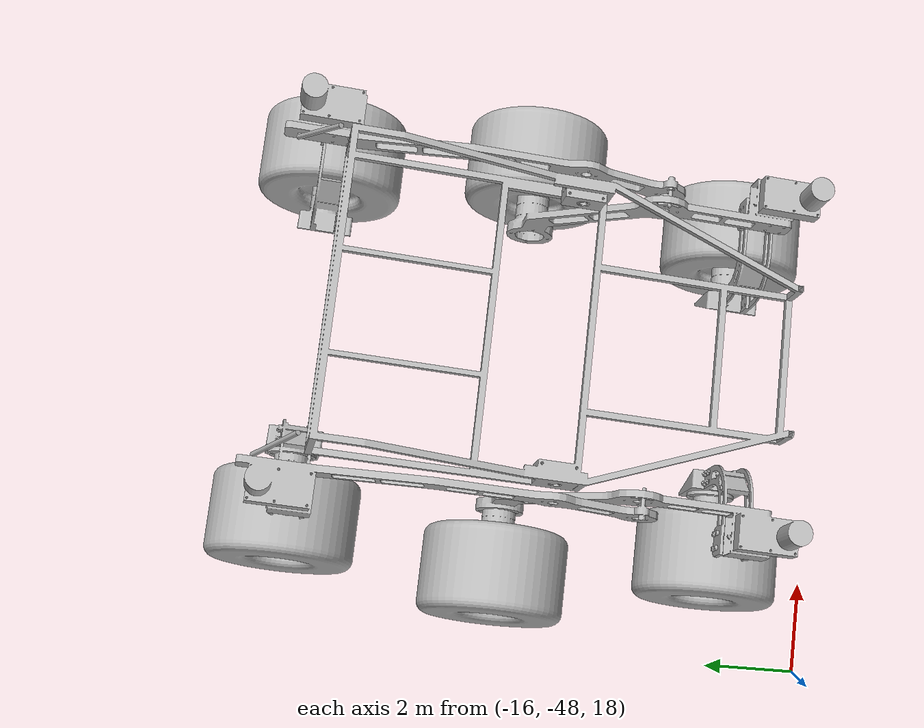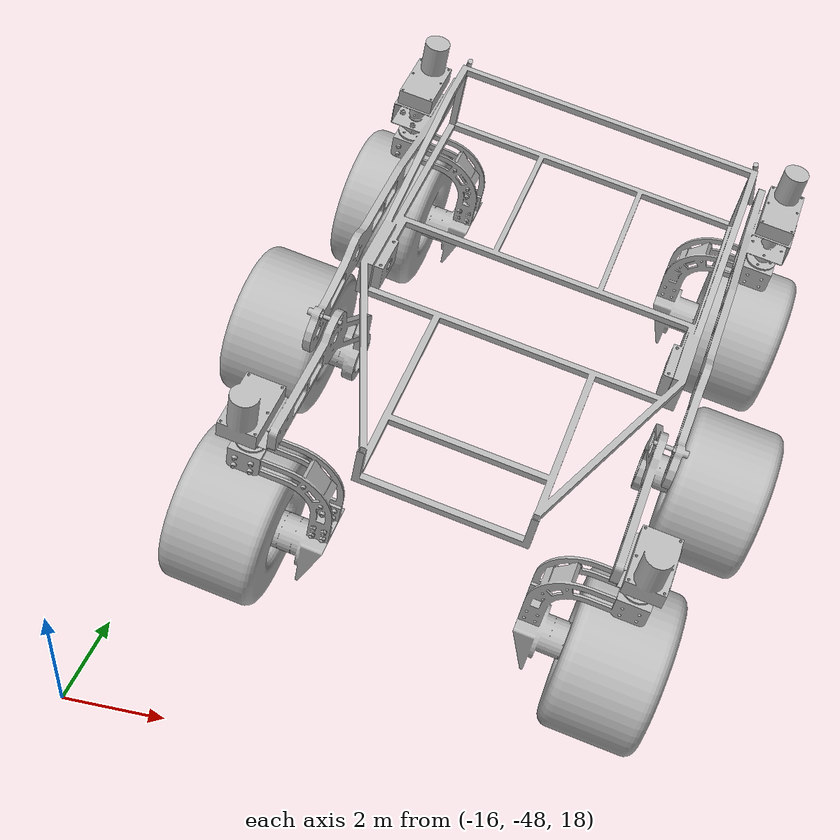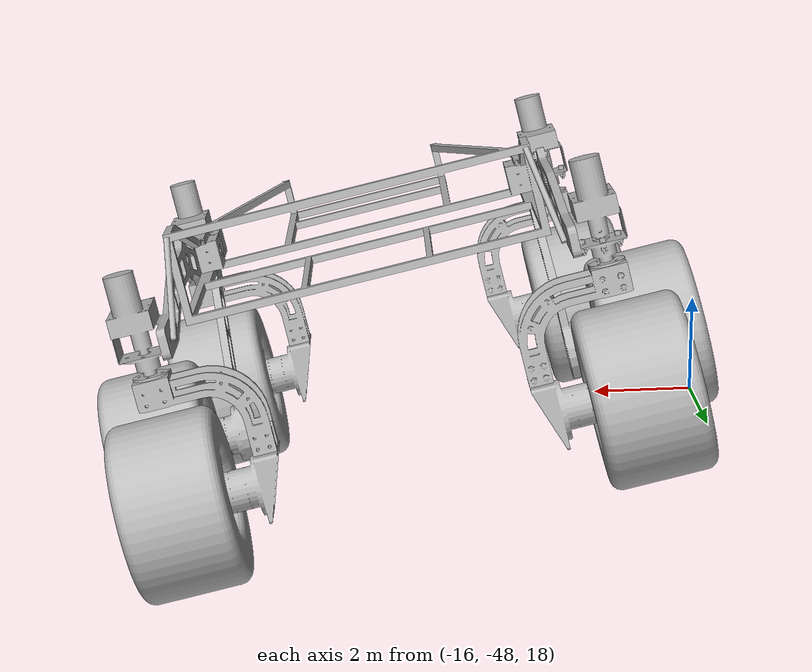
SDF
<sdf version="1.5">
 <world name="default">
  <light name="sun" type="directional">
   <pose>0 0 10 0 -0 0</pose>
   <diffuse>0.8 0.8 0.8 1</diffuse>
   <specular>0.2 0.2 0.2 1</specular>
   <attenuation>
    <range>1000</range>
    <constant>0.9</constant>
    <linear>0.01</linear>
    <quadratic>0.001</quadratic>
   </attenuation>
   <direction>-0.5 0.1 -0.9</direction>
  </light>
  <physics type="ode">
   <max_step_size>0.001</max_step_size>
   <real_time_factor>1</real_time_factor>
   <real_time_update_rate>1000</real_time_update_rate>
   <gravity>0 0 -9.8</gravity>
  </physics>
  <scene><ambient>0.4 0.4 0.4 1</ambient><background>0.7 0.7 0.7 1</background><shadows>1</shadows></scene>
  <audio><device>default</device></audio>
  <spherical_coordinates>
   <surface_model>EARTH_WGS84</surface_model>
   <latitude_deg>0</latitude_deg>
   <longitude_deg>0</longitude_deg>
   <elevation>0</elevation>
   <heading_deg>0</heading_deg>
  </spherical_coordinates>
  <model name="MSI Rover">
   <static>0</static>
   <link name="Chassis">
    <self_collide>1</self_collide>
    <pose>0 0 4.72 0 -0 0</pose>
    <collision name="Chassis_Collision">
     <geometry><mesh><scale>0.01 0.01 0.01</scale><uri>model://msi_rover/meshes/Chassis.STL</uri></mesh></geometry>
    </collision>
    <visual name="Chassis_Visual">
     <geometry><mesh><scale>0.01 0.01 0.01</scale><uri>model://msi_rover/meshes/Chassis.STL</uri></mesh></geometry>
    </visual>
    <velocity_decay><linear>0</linear><angular>0</angular></velocity_decay>
    <inertial>
     <inertia><ixx>1</ixx><ixy>0</ixy><ixz>0</ixz><iyy>1</iyy><iyz>0</iyz><izz>1</izz></inertia>
     <mass>1</mass>
    </inertial>
   </link>
   <link name="Left_Rocker">
    <self_collide>1</self_collide>
    <pose>-3.27 0 4.72 0 -0 0</pose>
    <collision name="Left_Rocker_Collision">
     <geometry>
      <mesh><scale>0.01 0.01 0.01</scale><uri>model://msi_rover/meshes/Rocker_L.STL</uri></mesh>
     </geometry>
    </collision>
    <visual name="Left_Rocker_Visual">
     <geometry>
      <mesh><scale>0.01 0.01 0.01</scale><uri>model://msi_rover/meshes/Rocker_L.STL</uri></mesh>
     </geometry>
    </visual>
    <velocity_decay><linear>0</linear><angular>0</angular></velocity_decay>
    <inertial>
     <inertia><ixx>1</ixx><ixy>0</ixy><ixz>0</ixz><iyy>1</iyy><iyz>0</iyz><izz>1</izz></inertia>
     <mass>1</mass>
    </inertial>
   </link>
   <link name="Left_Bogie">
    <self_collide>1</self_collide>
    <pose>-2.94 1.75 4.32 0 -0 0</pose>
    <collision name="Left_Bogie_Collision">
     <geometry><mesh><scale>0.01 0.01 0.01</scale><uri>model://msi_rover/meshes/Bogie_L.STL</uri></mesh></geometry>
    </collision>
    <visual name="Left_Bogie_Visual">
     <geometry><mesh><scale>0.01 0.01 0.01</scale><uri>model://msi_rover/meshes/Bogie_L.STL</uri></mesh></geometry>
    </visual>
    <velocity_decay><linear>0</linear><angular>0</angular></velocity_decay>
    <inertial>
     <inertia><ixx>1</ixx><ixy>0</ixy><ixz>0</ixz><iyy>1</iyy><iyz>0</iyz><izz>1</izz></inertia>
     <mass>1</mass>
    </inertial>
   </link>
   <link name="Left_Rear_Steering">
    <self_collide>1</self_collide>
    <pose>-3.81 -4.9 3.68 0 -0 0</pose>
    <collision name="Left_Rear_Steering_Collision">
     <geometry>
      <mesh><scale>0.01 0.01 0.01</scale><uri>model://msi_rover/meshes/C_Assembly_L.STL</uri></mesh>
     </geometry>
    </collision>
    <visual name="Left_Rear_Steering_Visual">
     <geometry>
      <mesh><scale>0.01 0.01 0.01</scale><uri>model://msi_rover/meshes/C_Assembly_L.STL</uri></mesh>
     </geometry>
    </visual>
    <velocity_decay><linear>0</linear><angular>0</angular></velocity_decay>
    <inertial>
     <inertia><ixx>1</ixx><ixy>0</ixy><ixz>0</ixz><iyy>1</iyy><iyz>0</iyz><izz>1</izz></inertia>
     <mass>1</mass>
    </inertial>
   </link>
   <link name="Left_Front_Steering">
    <self_collide>1</self_collide>
    <pose>-3.48 4 3.68 0 -0 0</pose>
    <collision name="Left_Front_Steering_Collision">
     <geometry>
      <mesh><scale>0.01 0.01 0.01</scale><uri>model://msi_rover/meshes/C_Assembly_L.STL</uri></mesh>
     </geometry>
    </collision>
    <visual name="Left_Front_Steering_Visual">
     <geometry>
      <mesh><scale>0.01 0.01 0.01</scale><uri>model://msi_rover/meshes/C_Assembly_L.STL</uri></mesh>
     </geometry>
    </visual>
    <velocity_decay><linear>0</linear><angular>0</angular></velocity_decay>
    <inertial>
     <inertia><ixx>1</ixx><ixy>0</ixy><ixz>0</ixz><iyy>1</iyy><iyz>0</iyz><izz>1</izz></inertia>
     <mass>1</mass>
    </inertial>
   </link>
   <link name="Left_Rear_Tyre">
    <self_collide>1</self_collide>
    <pose>-3.91 -4.9 1.5 0 -0 0</pose>
    <collision name="Left_Rear_Tyre_Collision">
     <geometry><mesh><scale>0.01 0.01 0.01</scale><uri>model://msi_rover/meshes/Tyre.STL</uri></mesh></geometry>
    </collision>
    <visual name="Left_Rear_Tyre_Visual">
     <geometry><mesh><scale>0.01 0.01 0.01</scale><uri>model://msi_rover/meshes/Tyre.STL</uri></mesh></geometry>
    </visual>
    <velocity_decay><linear>0</linear><angular>0</angular></velocity_decay>
    <inertial>
     <inertia><ixx>1</ixx><ixy>0</ixy><ixz>0</ixz><iyy>1</iyy><iyz>0</iyz><izz>1</izz></inertia>
     <mass>1</mass>
    </inertial>
   </link>
   <link name="Left_Middle_Tyre">
    <self_collide>1</self_collide>
    <pose>-4.48 -0.5 1.5 0 -0 0</pose>
    <collision name="Left_Middle_Tyre_Collision">
     <geometry><mesh><scale>0.01 0.01 0.01</scale><uri>model://msi_rover/meshes/Tyre.STL</uri></mesh></geometry>
    </collision>
    <visual name="Left_Middle_Tyre_Visual">
     <geometry><mesh><scale>0.01 0.01 0.01</scale><uri>model://msi_rover/meshes/Tyre.STL</uri></mesh></geometry>
    </visual>
    <velocity_decay><linear>0</linear><angular>0</angular></velocity_decay>
    <inertial>
     <inertia><ixx>1</ixx><ixy>0</ixy><ixz>0</ixz><iyy>1</iyy><iyz>0</iyz><izz>1</izz></inertia>
     <mass>1</mass>
    </inertial>
   </link>
   <link name="Left_Front_Tyre">
    <self_collide>1</self_collide>
    <pose>-3.58 4 1.5 0 -0 0</pose>
    <collision name="Left_Front_Tyre_Collision">
     <geometry><mesh><scale>0.01 0.01 0.01</scale><uri>model://msi_rover/meshes/Tyre.STL</uri></mesh></geometry>
    </collision>
    <visual name="Left_Front_Tyre_Visual">
     <geometry><mesh><scale>0.01 0.01 0.01</scale><uri>model://msi_rover/meshes/Tyre.STL</uri></mesh></geometry>
    </visual>
    <velocity_decay><linear>0</linear><angular>0</angular></velocity_decay>
    <inertial>
     <inertia><ixx>1</ixx><ixy>0</ixy><ixz>0</ixz><iyy>1</iyy><iyz>0</iyz><izz>1</izz></inertia>
     <mass>1</mass>
    </inertial>
   </link>
   <joint name="Left_Rocker_Joint" type="revolute">
    <child>Left_Rocker</child>
    <parent>Chassis</parent>
    <axis>
     <xyz>1 0 0</xyz>
     <use_parent_model_frame>1</use_parent_model_frame>
     <limit><lower>-1e+16</lower><upper>1e+16</upper></limit>
     <dynamics><spring_reference>0</spring_reference><spring_stiffness>0</spring_stiffness></dynamics>
    </axis>
   </joint>
   <joint name="Left_Bogie_Joint" type="revolute">
    <child>Left_Bogie</child>
    <parent>Left_Rocker</parent>
    <axis>
     <xyz>1 0 0</xyz>
     <use_parent_model_frame>1</use_parent_model_frame>
     <limit><lower>-1e+16</lower><upper>1e+16</upper></limit>
     <dynamics><spring_reference>0</spring_reference><spring_stiffness>0</spring_stiffness></dynamics>
    </axis>
   </joint>
   <joint name="Left_Rear_Steering_Joint" type="revolute">
    <child>Left_Rear_Steering</child>
    <parent>Left_Rocker</parent>
    <axis>
     <xyz>0 0 -1</xyz>
     <use_parent_model_frame>1</use_parent_model_frame>
     <limit><lower>-1e+16</lower><upper>1e+16</upper></limit>
     <dynamics><spring_reference>0</spring_reference><spring_stiffness>0</spring_stiffness></dynamics>
    </axis>
   </joint>
   <joint name="Left_Front_Steering_Joint" type="revolute">
    <child>Left_Front_Steering</child>
    <parent>Left_Bogie</parent>
    <axis>
     <xyz>0 0 -1</xyz>
     <use_parent_model_frame>1</use_parent_model_frame>
     <limit><lower>-1e+16</lower><upper>1e+16</upper></limit>
     <dynamics><spring_reference>0</spring_reference><spring_stiffness>0</spring_stiffness></dynamics>
    </axis>
   </joint>
   <joint name="Left_Rear_Tyre_Joint" type="revolute">
    <child>Left_Rear_Tyre</child>
    <parent>Left_Rear_Steering</parent>
    <axis>
     <xyz>1 0 0</xyz>
     <use_parent_model_frame>1</use_parent_model_frame>
     <limit><lower>-1e+16</lower><upper>1e+16</upper></limit>
     <dynamics><spring_reference>0</spring_reference><spring_stiffness>0</spring_stiffness></dynamics>
    </axis>
   </joint>
   <joint name="Left_Middle_Tyre_Joint" type="revolute">
    <child>Left_Middle_Tyre</child>
    <parent>Left_Bogie</parent>
    <axis>
     <xyz>1 0 0</xyz>
     <use_parent_model_frame>1</use_parent_model_frame>
     <limit><lower>-1e+16</lower><upper>1e+16</upper></limit>
     <dynamics><spring_reference>0</spring_reference><spring_stiffness>0</spring_stiffness></dynamics>
    </axis>
   </joint>
   <joint name="Left_Front_Tyre_Joint" type="revolute">
    <child>Left_Front_Tyre</child>
    <parent>Left_Front_Steering</parent>
    <axis>
     <xyz>1 0 0</xyz>
     <use_parent_model_frame>1</use_parent_model_frame>
     <limit><lower>-1e+16</lower><upper>1e+16</upper></limit>
     <dynamics><spring_reference>0</spring_reference><spring_stiffness>0</spring_stiffness></dynamics>
    </axis>
   </joint>
   <link name="Right_Rocker">
    <self_collide>1</self_collide>
    <pose>3.27 0 4.72 0 -0 0</pose>
    <collision name="Right_Rocker_Collision">
     <geometry>
      <mesh><scale>0.01 0.01 0.01</scale><uri>model://msi_rover/meshes/Rocker_R.STL</uri></mesh>
     </geometry>
    </collision>
    <visual name="Right_Rocker_Visual">
     <geometry>
      <mesh><scale>0.01 0.01 0.01</scale><uri>model://msi_rover/meshes/Rocker_R.STL</uri></mesh>
     </geometry>
    </visual>
    <velocity_decay><linear>0</linear><angular>0</angular></velocity_decay>
    <inertial>
     <inertia><ixx>1</ixx><ixy>0</ixy><ixz>0</ixz><iyy>1</iyy><iyz>0</iyz><izz>1</izz></inertia>
     <mass>1</mass>
    </inertial>
   </link>
   <link name="Right_Bogie">
    <self_collide>1</self_collide>
    <pose>2.94 1.75 4.32 0 -0 0</pose>
    <collision name="Right_Bogie_Collision">
     <geometry><mesh><scale>0.01 0.01 0.01</scale><uri>model://msi_rover/meshes/Bogie_R.STL</uri></mesh></geometry>
    </collision>
    <visual name="Right_Bogie_Visual">
     <geometry><mesh><scale>0.01 0.01 0.01</scale><uri>model://msi_rover/meshes/Bogie_R.STL</uri></mesh></geometry>
    </visual>
    <velocity_decay><linear>0</linear><angular>0</angular></velocity_decay>
    <inertial>
     <inertia><ixx>1</ixx><ixy>0</ixy><ixz>0</ixz><iyy>1</iyy><iyz>0</iyz><izz>1</izz></inertia>
     <mass>1</mass>
    </inertial>
   </link>
   <link name="Right_Rear_Steering">
    <self_collide>1</self_collide>
    <pose>3.81 -4.9 3.68 0 -0 0</pose>
    <collision name="Right_Rear_Steering_Collision">
     <geometry>
      <mesh><scale>0.01 0.01 0.01</scale><uri>model://msi_rover/meshes/C_Assembly_R.STL</uri></mesh>
     </geometry>
    </collision>
    <visual name="Right_Rear_Steering_Visual">
     <geometry>
      <mesh><scale>0.01 0.01 0.01</scale><uri>model://msi_rover/meshes/C_Assembly_R.STL</uri></mesh>
     </geometry>
    </visual>
    <velocity_decay><linear>0</linear><angular>0</angular></velocity_decay>
    <inertial>
     <inertia><ixx>1</ixx><ixy>0</ixy><ixz>0</ixz><iyy>1</iyy><iyz>0</iyz><izz>1</izz></inertia>
     <mass>1</mass>
    </inertial>
   </link>
   <link name="Right_Front_Steering">
    <self_collide>1</self_collide>
    <pose>3.48 4 3.68 0 -0 0</pose>
    <collision name="Right_Front_Steering_Collision">
     <geometry>
      <mesh><scale>0.01 0.01 0.01</scale><uri>model://msi_rover/meshes/C_Assembly_R.STL</uri></mesh>
     </geometry>
    </collision>
    <visual name="Right_Front_Steering_Visual">
     <geometry>
      <mesh><scale>0.01 0.01 0.01</scale><uri>model://msi_rover/meshes/C_Assembly_R.STL</uri></mesh>
     </geometry>
    </visual>
    <velocity_decay><linear>0</linear><angular>0</angular></velocity_decay>
    <inertial>
     <inertia><ixx>1</ixx><ixy>0</ixy><ixz>0</ixz><iyy>1</iyy><iyz>0</iyz><izz>1</izz></inertia>
     <mass>1</mass>
    </inertial>
   </link>
   <link name="Right_Rear_Tyre">
    <self_collide>1</self_collide>
    <pose>3.91 -4.9 1.5 0 -0 0</pose>
    <collision name="Right_Rear_Tyre_Collision">
     <geometry><mesh><scale>0.01 0.01 0.01</scale><uri>model://msi_rover/meshes/Tyre.STL</uri></mesh></geometry>
    </collision>
    <visual name="Right_Rear_Tyre_Visual">
     <geometry><mesh><scale>0.01 0.01 0.01</scale><uri>model://msi_rover/meshes/Tyre.STL</uri></mesh></geometry>
    </visual>
    <velocity_decay><linear>0</linear><angular>0</angular></velocity_decay>
    <inertial>
     <inertia><ixx>1</ixx><ixy>0</ixy><ixz>0</ixz><iyy>1</iyy><iyz>0</iyz><izz>1</izz></inertia>
     <mass>1</mass>
    </inertial>
   </link>
   <link name="Right_Middle_Tyre">
    <self_collide>1</self_collide>
    <pose>4.48 -0.5 1.5 0 -0 0</pose>
    <collision name="Right_Middle_Tyre_Collision">
     <geometry><mesh><scale>0.01 0.01 0.01</scale><uri>model://msi_rover/meshes/Tyre.STL</uri></mesh></geometry>
    </collision>
    <visual name="Right_Middle_Tyre_Visual">
     <geometry><mesh><scale>0.01 0.01 0.01</scale><uri>model://msi_rover/meshes/Tyre.STL</uri></mesh></geometry>
    </visual>
    <velocity_decay><linear>0</linear><angular>0</angular></velocity_decay>
    <inertial>
     <inertia><ixx>1</ixx><ixy>0</ixy><ixz>0</ixz><iyy>1</iyy><iyz>0</iyz><izz>1</izz></inertia>
     <mass>1</mass>
    </inertial>
   </link>
   <link name="Right_Front_Tyre">
    <self_collide>1</self_collide>
    <pose>3.58 4 1.5 0 -0 0</pose>
    <collision name="Right_Front_Tyre_Collision">
     <geometry><mesh><scale>0.01 0.01 0.01</scale><uri>model://msi_rover/meshes/Tyre.STL</uri></mesh></geometry>
    </collision>
    <visual name="Right_Front_Tyre_Visual">
     <geometry><mesh><scale>0.01 0.01 0.01</scale><uri>model://msi_rover/meshes/Tyre.STL</uri></mesh></geometry>
    </visual>
    <velocity_decay><linear>0</linear><angular>0</angular></velocity_decay>
    <inertial>
     <inertia><ixx>1</ixx><ixy>0</ixy><ixz>0</ixz><iyy>1</iyy><iyz>0</iyz><izz>1</izz></inertia>
     <mass>1</mass>
    </inertial>
   </link>
   <joint name="Right_Rocker_Joint" type="revolute">
    <child>Right_Rocker</child>
    <parent>Chassis</parent>
    <axis>
     <xyz>1 0 0</xyz>
     <use_parent_model_frame>1</use_parent_model_frame>
     <limit><lower>-1e+16</lower><upper>1e+16</upper></limit>
     <dynamics><spring_reference>0</spring_reference><spring_stiffness>0</spring_stiffness></dynamics>
    </axis>
   </joint>
   <joint name="Right_Bogie_Joint" type="revolute">
    <child>Right_Bogie</child>
    <parent>Right_Rocker</parent>
    <axis>
     <xyz>1 0 0</xyz>
     <use_parent_model_frame>1</use_parent_model_frame>
     <limit><lower>-1e+16</lower><upper>1e+16</upper></limit>
     <dynamics><spring_reference>0</spring_reference><spring_stiffness>0</spring_stiffness></dynamics>
    </axis>
   </joint>
   <joint name="Right_Rear_Steering_Joint" type="revolute">
    <child>Right_Rear_Steering</child>
    <parent>Right_Rocker</parent>
    <axis>
     <xyz>0 0 -1</xyz>
     <use_parent_model_frame>1</use_parent_model_frame>
     <limit><lower>-1e+16</lower><upper>1e+16</upper></limit>
     <dynamics><spring_reference>0</spring_reference><spring_stiffness>0</spring_stiffness></dynamics>
    </axis>
   </joint>
   <joint name="Right_Front_Steering_Joint" type="revolute">
    <child>Right_Front_Steering</child>
    <parent>Right_Bogie</parent>
    <axis>
     <xyz>0 0 -1</xyz>
     <use_parent_model_frame>1</use_parent_model_frame>
     <limit><lower>-1e+16</lower><upper>1e+16</upper></limit>
     <dynamics><spring_reference>0</spring_reference><spring_stiffness>0</spring_stiffness></dynamics>
    </axis>
   </joint>
   <joint name="Right_Rear_Tyre_Joint" type="revolute">
    <child>Right_Rear_Tyre</child>
    <parent>Right_Rear_Steering</parent>
    <axis>
     <xyz>1 0 0</xyz>
     <use_parent_model_frame>1</use_parent_model_frame>
     <limit><lower>-1e+16</lower><upper>1e+16</upper></limit>
     <dynamics><spring_reference>0</spring_reference><spring_stiffness>0</spring_stiffness></dynamics>
    </axis>
   </joint>
   <joint name="Right_Middle_Tyre_Joint" type="revolute">
    <child>Right_Middle_Tyre</child>
    <parent>Right_Bogie</parent>
    <axis>
     <xyz>1 0 0</xyz>
     <use_parent_model_frame>1</use_parent_model_frame>
     <limit><lower>-1e+16</lower><upper>1e+16</upper></limit>
     <dynamics><spring_reference>0</spring_reference><spring_stiffness>0</spring_stiffness></dynamics>
    </axis>
   </joint>
   <joint name="Right_Front_Tyre_Joint" type="revolute">
    <child>Right_Front_Tyre</child>
    <parent>Right_Front_Steering</parent>
    <axis>
     <xyz>1 0 0</xyz>
     <use_parent_model_frame>1</use_parent_model_frame>
     <limit><lower>-1e+16</lower><upper>1e+16</upper></limit>
     <dynamics><spring_reference>0</spring_reference><spring_stiffness>0</spring_stiffness></dynamics>
    </axis>
   </joint>
   <link name="Left_Diff_Support">
    <self_collide>1</self_collide>
    <pose>-3.085 -5.34 5.08 -0.45 0.15 0</pose>
    <collision name="Left_Diff_Support_Collision">
     <geometry><cylinder><radius>0.05</radius><length>1.7</length></cylinder></geometry>
    </collision>
    <visual name="Left_Diff_Support_Visual">
     <geometry><cylinder><radius>0.05</radius><length>1.7</length></cylinder></geometry>
    </visual>
    <velocity_decay><linear>0</linear><angular>0</angular></velocity_decay>
    <inertial>
     <inertia><ixx>1</ixx><ixy>0</ixy><ixz>0</ixz><iyy>1</iyy><iyz>0</iyz><izz>1</izz></inertia>
     <mass>1</mass>
    </inertial>
   </link>
   <link name="Right_Diff_Support">
    <self_collide>1</self_collide>
    <pose>3.085 -5.34 5.08 -0.45 -0.15 0</pose>
    <collision name="Right_Diff_Support_Collision">
     <geometry><cylinder><radius>0.05</radius><length>1.7</length></cylinder></geometry>
    </collision>
    <visual name="Right_Diff_Support_Visual">
     <geometry><cylinder><radius>0.05</radius><length>1.7</length></cylinder></geometry>
    </visual>
    <velocity_decay><linear>0</linear><angular>0</angular></velocity_decay>
    <inertial>
     <inertia><ixx>1</ixx><ixy>0</ixy><ixz>0</ixz><iyy>1</iyy><iyz>0</iyz><izz>1</izz></inertia>
     <mass>1</mass>
    </inertial>
   </link>
   <joint name="Right_Lower_Triangle_Rod_Joint" type="revolute">
    <pose>0.75 0 0 0 -0 0</pose>
    <child>Lower_Triangle_Rod</child>
    <parent>Right_Triangle</parent>
    <axis>
     <xyz>0 1 0</xyz>
     <use_parent_model_frame>1</use_parent_model_frame>
     <limit><lower>-1e+16</lower><upper>1e+16</upper></limit>
     <dynamics><spring_reference>0</spring_reference><spring_stiffness>0</spring_stiffness></dynamics>
    </axis>
   </joint>
   <joint name="Left_Lower_Triangle_Rod_Joint" type="revolute">
    <pose>-0.75 0 0 0 -0 0</pose>
    <child>Lower_Triangle_Rod</child>
    <parent>Left_Triangle</parent>
    <axis>
     <xyz>0 1 0</xyz>
     <use_parent_model_frame>1</use_parent_model_frame>
     <limit><lower>-1e+16</lower><upper>1e+16</upper></limit>
     <dynamics><spring_reference>0</spring_reference><spring_stiffness>0</spring_stiffness></dynamics>
    </axis>
   </joint>
   <joint name="Right_Upper_Triangle_Rod_Joint" type="revolute">
    <pose>0.75 0 0 0 -0 0</pose>
    <child>Upper_Triangle_Rod</child>
    <parent>Right_Triangle</parent>
    <axis>
     <xyz>0 1 0</xyz>
     <use_parent_model_frame>1</use_parent_model_frame>
     <limit><lower>-1e+16</lower><upper>1e+16</upper></limit>
     <dynamics><spring_reference>0</spring_reference><spring_stiffness>0</spring_stiffness></dynamics>
    </axis>
   </joint>
   <joint name="Left_Upper_Triangle_Rod_Joint" type="revolute">
    <pose>-0.75 0 0 0 -0 0</pose>
    <child>Upper_Triangle_Rod</child>
    <parent>Left_Triangle</parent>
    <axis>
     <xyz>0 1 0</xyz>
     <use_parent_model_frame>1</use_parent_model_frame>
     <limit><lower>-1e+16</lower><upper>1e+16</upper></limit>
     <dynamics><spring_reference>0</spring_reference><spring_stiffness>0</spring_stiffness></dynamics>
    </axis>
   </joint>
   <joint name="Left_Diff_Support_Triangle_Joint" type="revolute2">
    <pose>0 0 0.88 0 -0 0</pose>
    <child>Left_Diff_Support</child>
    <parent>Chassis</parent>
    <axis>
     <xyz>0 1 0</xyz>
     <use_parent_model_frame>1</use_parent_model_frame>
     <limit><lower>-1e+16</lower><upper>1e+16</upper></limit>
     <dynamics><spring_reference>0</spring_reference><spring_stiffness>0</spring_stiffness></dynamics>
    </axis>
    <axis2>
     <xyz>0 0 1</xyz>
     <use_parent_model_frame>1</use_parent_model_frame>
     <dynamics><spring_reference>0</spring_reference><spring_stiffness>0</spring_stiffness></dynamics>
    </axis2>
   </joint>
   <joint name="Left_Diff_Support_Rocker_Joint" type="revolute2">
    <pose>0 0 -0.86 0 -0 0</pose>
    <child>Left_Diff_Support</child>
    <parent>Left_Rocker</parent>
    <axis>
     <xyz>1 0 0</xyz>
     <use_parent_model_frame>1</use_parent_model_frame>
     <limit><lower>-1e+16</lower><upper>1e+16</upper></limit>
     <dynamics><spring_reference>0</spring_reference><spring_stiffness>0</spring_stiffness></dynamics>
    </axis>
    <axis2>
     <xyz>0 0 1</xyz>
     <use_parent_model_frame>1</use_parent_model_frame>
     <dynamics><spring_reference>0</spring_reference><spring_stiffness>0</spring_stiffness></dynamics>
    </axis2>
   </joint>
   <joint name="Right_Diff_Support_Triangle_Joint" type="revolute2">
    <pose>0 0 0.88 0 -0 0</pose>
    <child>Right_Diff_Support</child>
    <parent>Chassis</parent>
    <axis>
     <xyz>0 1 0</xyz>
     <use_parent_model_frame>1</use_parent_model_frame>
     <limit><lower>-1e+16</lower><upper>1e+16</upper></limit>
     <dynamics><spring_reference>0</spring_reference><spring_stiffness>0</spring_stiffness></dynamics>
    </axis>
    <axis2>
     <xyz>0 0 1</xyz>
     <use_parent_model_frame>1</use_parent_model_frame>
     <dynamics><spring_reference>0</spring_reference><spring_stiffness>0</spring_stiffness></dynamics>
    </axis2>
   </joint>
   <joint name="Right_Diff_Support_Rocker_Joint" type="revolute2">
    <pose>0 0 -0.86 0 -0 0</pose>
    <child>Right_Diff_Support</child>
    <parent>Right_Rocker</parent>
    <axis>
     <xyz>1 0 0</xyz>
     <use_parent_model_frame>1</use_parent_model_frame>
     <limit><lower>-1e+16</lower><upper>1e+16</upper></limit>
     <dynamics><spring_reference>0</spring_reference><spring_stiffness>0</spring_stiffness></dynamics>
    </axis>
    <axis2>
     <xyz>0 0 1</xyz>
     <use_parent_model_frame>1</use_parent_model_frame>
     <dynamics><spring_reference>0</spring_reference><spring_stiffness>0</spring_stiffness></dynamics>
    </axis2>
   </joint>
   <pose>-9.88883 -41.412 19.2723 -0.162231 -0.239882 3.10682</pose>
  </model>
 </world>
</sdf>
